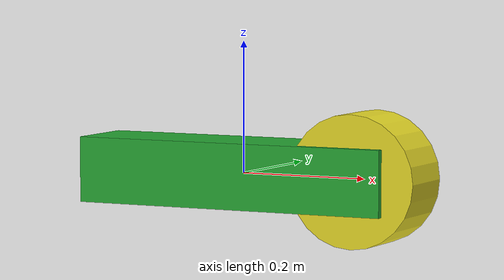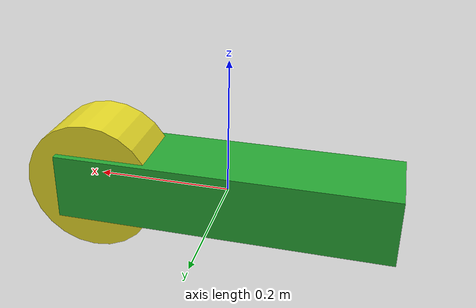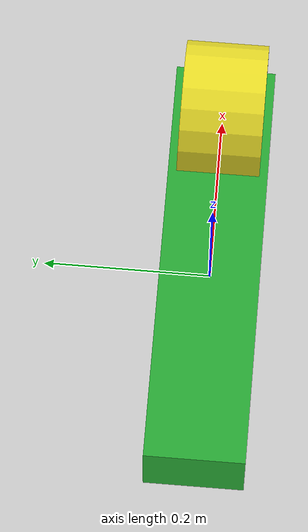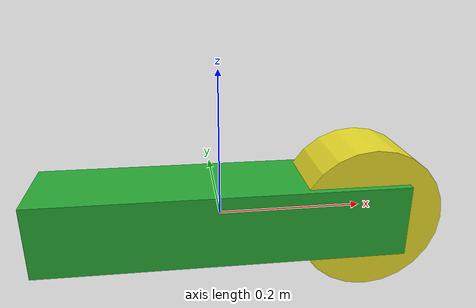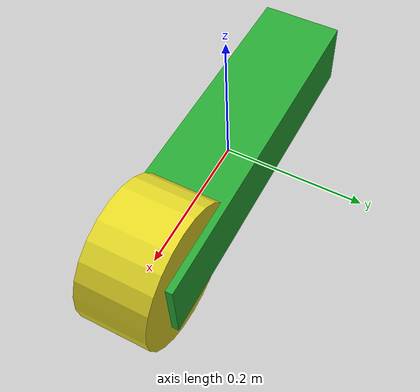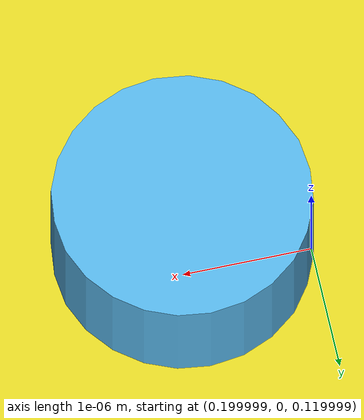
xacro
<?xml version="1.0"?>
<robot name="bicycle_bot" xmlns:xacro="http://wiki.ros.org/xacro">
  <!-- Include xacro for inertials, materials and wheels -->
  <xacro:include filename="$(find steer_bot_description)/urdf/wheel.xacro"/>

  <xacro:property name="robot_namespace" value="/bicycle_bot"/>

  <!-- Gazebo plugins -->
  <gazebo>
    <!-- Load ros_control plugin -->
    <plugin name="gazebo_ros_control" filename="libgazebo_ros_control.so">
      <robotSimType>gazebo_ros_control/DefaultRobotHWSim</robotSimType>
      <legacyModeNS>false</legacyModeNS>
    </plugin>

    <!-- Load gazebo_ros plugin. Publish passive (non-actuated) joints from Gazebo -->
    <plugin name="gazebo_ros_joint_state_publisher" filename="libgazebo_ros_joint_state_publisher.so">
        <jointName>
            front_wheel_joint
        </jointName>
        <updateRate>50</updateRate>
        <alwaysOn>true</alwaysOn>
    </plugin>
  </gazebo>

  <!-- Math constants -->
  <xacro:property name="deg_to_rad" value="0.01745329251994329577"/>

  <!-- Robot base dimensions -->
  <xacro:property name="base_length" value="0.5" />
  <xacro:property name="base_width" value="0.12" />
  <xacro:property name="base_height" value="0.1" />
  <xacro:property name="base_mass" value="5" />

  <!-- Wheel link dimensions -->
  <xacro:property name="wheel_radius" value="0.1" />
  <xacro:property name="wheel_thickness" value="0.1" />
  <xacro:property name="wheel_mass" value="1" />

  <!-- Steering link dimensions -->
  <xacro:property name="steer_radius" value="0.05" />
  <xacro:property name="steer_thickness" value="0.02" />
  <xacro:property name="steer_mass" value="1" />

  <!-- Axle positions -->
  <xacro:property name="axle_offset" value="0.05" />
  <xacro:property name="steer_offset" value="0.02" />

  <!-- Base link -->
  <link name="base_link">
    <visual>
      <origin xyz="0 0 0" rpy="0 0 0"/>
      <geometry>
        <box size="${base_length} ${base_width} ${base_height}"/>
      </geometry>
      <material name="green" />
    </visual>
    <collision>
      <origin xyz="0 0 0" rpy="0 0 0"/>
      <geometry>
        <box size="${base_length} ${base_width} ${base_height}"/>
      </geometry>
    </collision>
    <xacro:solid_cuboid_inertial
        rpy="0 0 0" xyz="0 0 0"
        mass="${base_mass}"
        x="${base_length}" y="${base_width}" z="${base_height}" />
  </link>

  <!-- Front steer and rear wheel joints required for ackermann_steering_controller -->
  <xacro:front_steer
    name="front"
    parent="base"
    steer_radius="${steer_radius}"
    steer_thickness="${steer_thickness}"
    steer_mass="${steer_mass}"
    base_length="${base_length}"
    base_width="${base_width}"
    axle_offset="${axle_offset}"
    steer_height="${wheel_radius+steer_offset}">
  </xacro:front_steer>

  <xacro:front_wheel
    name="front"
    parent="front_steer"
    wheel_radius="${wheel_radius}"
    wheel_thickness="${wheel_thickness}"
    wheel_mass="${wheel_mass}">
    <origin xyz="0 0 ${-wheel_radius-steer_offset}" rpy="${-90 * deg_to_rad} 0 0"/>
  </xacro:front_wheel>

  <xacro:rear_wheel
    name="rear"
    parent="base"
    wheel_radius="${wheel_radius}"
    wheel_thickness="${wheel_thickness}"
    wheel_mass="${wheel_mass}">
    <origin xyz="${-base_length/2+axle_offset} 0 0" rpy="${-90 * deg_to_rad} 0 0"/>
  </xacro:rear_wheel>

  <!-- Colour -->
  <gazebo reference="base_link">
    <material>Gazebo/Green</material>
  </gazebo>

</robot>

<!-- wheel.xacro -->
<robot name="wheel" xmlns:xacro="http://wiki.ros.org/xacro">
  <!-- Include xacro for materials and inertials -->
  <xacro:include filename="$(find qingzhou_description)/urdf/materials.xacro"/>
  <xacro:include filename="$(find qingzhou_description)/urdf/inertials.xacro"/>

  <!-- Properties -->
  <xacro:property name="steer_effort" value="10.0"/>
  <xacro:property name="steer_velocity" value="5.0"/>
  <xacro:property name="steer_limit_deg" value="45.0"/>

  <!-- Bicycle model front steering link (required for steer_drive_controller) -->
  <xacro:macro name="front_steer"
    params="
      name
      parent
      steer_radius
      steer_thickness
      steer_mass
      base_length
      base_width
      axle_offset
      steer_height">
      <!-- bycile steer link-->
    <link name="${name}_steer_link">
      <visual>
        <origin xyz="0 0 0" rpy="0 0 0"/>
        <geometry>
          <cylinder radius="${0.000001}" length="${0.000001}"/>
        </geometry>
      </visual>
      <collision>
        <origin xyz="0 0 0" rpy="0 0 0"/>
        <geometry>
          <cylinder radius="${steer_radius}" length="${steer_thickness}"/>
        </geometry>
      </collision>
      <xacro:solid_cylinder_inertial
          rpy="0 0 0" xyz="0 0 0"
          mass="${steer_mass}"
          radius="${steer_radius}" length="${steer_thickness}" />
    </link>

    <joint name="${name}_steer_joint" type="revolute">
      <parent link="${parent}_link"/>
      <child link="${name}_steer_link"/>
      <origin xyz="${base_length/2-axle_offset} 0 ${steer_height}" rpy="0 0 0"/>
      <axis xyz="0 0 1"/>
      <limit effort="${steer_effort}"
             lower="${-180.0 * deg_to_rad}" upper="${180.0 * deg_to_rad}"
             velocity="${steer_velocity}"/>
    </joint>

    <transmission name="${name}_steer_joint_trans">
      <type>transmission_interface/SimpleTransmission</type>
      <actuator name="${name}_steer_joint_motor">
        <mechanicalReduction>1</mechanicalReduction>
        <hardwareInterface>hardware_interface/PositionJointInterface</hardwareInterface>
      </actuator>
      <joint name="${name}_steer_joint">
        <hardwareInterface>hardware_interface/PositionJointInterface</hardwareInterface>
      </joint>
    </transmission>

  </xacro:macro>

  <!-- Car steering model front (steerable) wheel links (left/right) -->
  <xacro:macro name="front_wheel_lr"
    params="
      name
      parent
      reflect
      wheel_radius
      wheel_thickness
      wheel_mass
      steer_radius
      steer_thickness
      steer_mass
      base_length
      base_width
      axle_offset
      steer_height">
    <link name="${name}_steer_link">
      <visual>
        <origin xyz="0 0 0" rpy="0 0 0"/>
        <geometry>
          <cylinder radius="0.0001" length="0.0001"/>
        </geometry>
      </visual>
      <collision>
        <origin xyz="0 0 0" rpy="0 0 0"/>
        <geometry>
          <cylinder radius="0.0001" length="0.0001"/>
        </geometry>
      </collision>
      <xacro:solid_cylinder_inertial
          rpy="0 0 0" xyz="0 0 0"
          mass="${steer_mass}"
          radius="${steer_radius}" length="${steer_thickness}" />
    </link>

    <joint name="${name}_steer_joint" type="revolute">
      <parent link="${parent}_link"/>
      <child link="${name}_steer_link"/>
      <origin xyz="${base_length/2-axle_offset*2} ${reflect*(base_width/2)} ${steer_height}" rpy="0 0 0"/>
      <axis xyz="0 0 1"/>
      <limit effort="${steer_effort}"
             lower="${steer_limit_deg * deg_to_rad * -1.0}" upper="${steer_limit_deg * deg_to_rad}"
             velocity="${steer_velocity}"/>
    </joint>

    <link name="${name}_wheel_link">
      <visual>
        <origin xyz="0 0 0" rpy="0 0 0"/>
        <geometry>
          <mesh filename="package://qingzhou_description/meshes/wheel.dae" />
        </geometry>
      </visual>
      <collision>
        <origin xyz="0 0 0" rpy="0 0 0"/>
        <geometry>
          <cylinder radius="${wheel_radius}" length="${wheel_thickness}"/>
        </geometry>
      </collision>
      <xacro:solid_cylinder_inertial
          rpy="0 0 0" xyz="0 0 0"
          mass="${wheel_mass}"
          radius="${wheel_radius}" length="${wheel_thickness}" />
    </link>

    <joint name="${name}_wheel_joint" type="continuous">
      <parent link="${name}_steer_link"/>
      <child link="${name}_wheel_link"/>
      <origin xyz="0 0 ${-steer_height}" rpy="${-90 * deg_to_rad} 0 0"/>
      <axis xyz="0 0 1"/>
    </joint>

    <transmission name="${name}_steer_joint_trans">
      <type>transmission_interface/SimpleTransmission</type>
      <actuator name="${name}_steer_joint_motor">
        <mechanicalReduction>1</mechanicalReduction>
        <hardwareInterface>hardware_interface/PositionJointInterface</hardwareInterface>
      </actuator>
      <joint name="${name}_steer_joint">
        <hardwareInterface>hardware_interface/PositionJointInterface</hardwareInterface>
      </joint>
    </transmission>

    <transmission name="${name}_wheel_joint_trans">
      <type>transmission_interface/SimpleTransmission</type>
      <actuator name="${name}_wheel_joint_motor">
        <mechanicalReduction>1</mechanicalReduction>
        <hardwareInterface>hardware_interface/VelocityJointInterface</hardwareInterface>
      </actuator>
      <joint name="${name}_wheel_joint">
        <hardwareInterface>hardware_interface/VelocityJointInterface</hardwareInterface>
      </joint>
    </transmission>

  </xacro:macro>

  <!-- Bicycle model rear wheel link (required for steer_drive_controller) -->
  <xacro:macro name="rear_wheel"
    params="
      name
      parent
      wheel_radius
      wheel_thickness
      wheel_mass
      *origin">
    <link name="${name}_wheel_link">
      <visual>
        <origin xyz="0 0 0" rpy="0 0 0"/>
        <geometry>
          <cylinder radius="0.0001" length="0.0001"/>
        </geometry>
        <material name="yellow" />
      </visual>
      <collision>
        <origin xyz="0 0 0" rpy="0 0 0"/>
        <geometry>
          <cylinder radius="0.0001" length="0.0001"/>
        </geometry>
      </collision>
      <xacro:solid_cylinder_inertial
          rpy="0 0 0" xyz="0 0 0"
          mass="${wheel_mass}"
          radius="${wheel_radius}" length="${wheel_thickness}" />
    </link>

    <joint name="${name}_wheel_joint" type="continuous">
      <parent link="${parent}_link"/>
      <child link="${name}_wheel_link"/>
      <xacro:insert_block name="origin"/>
      <axis xyz="0 0 1"/>
    </joint>

    <transmission name="${name}_wheel_joint_trans">
      <type>transmission_interface/SimpleTransmission</type>
      <actuator name="${name}_wheel_joint_motor">
        <mechanicalReduction>1</mechanicalReduction>
        <hardwareInterface>hardware_interface/VelocityJointInterface</hardwareInterface>
      </actuator>
      <joint name="${name}_wheel_joint">
        <hardwareInterface>hardware_interface/VelocityJointInterface</hardwareInterface>
      </joint>
    </transmission>

  </xacro:macro>

  <!-- Bicycle model front wheel link (passive - no transmission) -->
  <xacro:macro name="front_wheel"
    params="
      name
      parent
      wheel_radius
      wheel_thickness
      wheel_mass
      *origin">
    <link name="${name}_wheel_link">
      <visual>
        <origin xyz="0 0 0" rpy="0 0 0"/>
        <geometry>
          <cylinder radius="${wheel_radius}" length="${wheel_thickness}"/>
        </geometry>
        <material name="yellow" />
      </visual>
      <collision>
        <origin xyz="0 0 0" rpy="0 0 0"/>
        <geometry>
          <cylinder radius="${wheel_radius}" length="${wheel_thickness}"/>
        </geometry>
      </collision>
      <xacro:solid_cylinder_inertial
          rpy="0 0 0" xyz="0 0 0"
          mass="${wheel_mass}"
          radius="${wheel_radius}" length="${wheel_thickness}" />
    </link>

    <joint name="${name}_wheel_joint" type="continuous">
      <parent link="${parent}_link"/>
      <child link="${name}_wheel_link"/>
      <xacro:insert_block name="origin"/>
      <axis xyz="0 0 1"/>
    </joint>

  </xacro:macro>

  <!-- Car steering model rear wheel links (left/right) -->
  <xacro:macro name="rear_wheel_lr"
    params="
      name
      parent
      wheel_radius
      wheel_thickness
      wheel_mass
      *origin">
    <link name="${name}_wheel_link">
      <visual>
        <origin xyz="0 0 0" rpy="0 0 0"/>
        <geometry>
          <mesh filename="package://qingzhou_description/meshes/wheel.dae" />
        </geometry>
      </visual>
      <collision>
        <origin xyz="0 0 0" rpy="0 0 0"/>
        <geometry>
          <cylinder radius="${wheel_radius}" length="${wheel_thickness}"/>
        </geometry>
      </collision>
      <xacro:solid_cylinder_inertial
          rpy="0 0 0" xyz="0 0 0"
          mass="${wheel_mass}"
          radius="${wheel_radius}" length="${wheel_thickness}" />
    </link>

    <joint name="${name}_wheel_joint" type="continuous">
      <parent link="${parent}_link"/>
      <child link="${name}_wheel_link"/>
      <xacro:insert_block name="origin"/>
      <axis xyz="0 0 1"/>
    </joint>

    <transmission name="${name}_wheel_joint_trans">
      <type>transmission_interface/SimpleTransmission</type>
      <actuator name="${name}_wheel_joint_motor">
        <mechanicalReduction>1</mechanicalReduction>
        <hardwareInterface>hardware_interface/VelocityJointInterface</hardwareInterface>
      </actuator>
      <joint name="${name}_wheel_joint">
        <hardwareInterface>hardware_interface/VelocityJointInterface</hardwareInterface>
      </joint>
    </transmission>

  </xacro:macro>
</robot>

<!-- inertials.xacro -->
<!--  xacro macros for inertials.

    Define xacro macros for math constants and inertials:

    - solid cuboid
    - solid cylinder
    - null (a placeholder inertial for logical link elements)
 -->
<robot name="inertials" xmlns:xacro="http://wiki.ros.org/xacro">

    <!-- Math constants -->
    <xacro:property name="math_pi"        value="3.141592653589793" />
    <xacro:property name="math_pi_over_2" value="1.5707963267948966" />
    <xacro:property name="math_pi_over_4" value="0.785398163397448" />

    <!-- Inertial for solid cuboid with dimensions x y z  -->
    <xacro:macro name="solid_cuboid_inertial" params="rpy xyz mass x y z">
        <inertial>
            <origin rpy="${rpy}" xyz="${xyz}"/>
            <mass value="${mass}" />
            <inertia
                ixx="${mass * (y * y + z * z) / 12.0}" ixy="0.0" ixz="0.0"
                iyy="${mass * (x * x + z * z) / 12.0}" iyz="0.0"
                izz="${mass * (x * x + y * y) / 12.0}" />
        </inertial>
    </xacro:macro>

    <!-- Inertial for solid cylinder with radius and length aligned to z-axis  -->
    <xacro:macro name="solid_cylinder_inertial" params="rpy xyz mass radius length">
        <inertial>
            <origin rpy="${rpy}" xyz="${xyz}"/>
            <mass value="${mass}" />
            <inertia
                ixx="${mass * (3.0 * radius * radius + length * length) / 12.0}" ixy="0.0" ixz="0.0"
                iyy="${mass * (3.0 * radius * radius + length * length) / 12.0}" iyz="0.0"
                izz="${mass * (radius * radius) / 2.0}" />
        </inertial>
    </xacro:macro>

    <!-- A null inertial - used in placeholder links to esure the model will work in Gazebo -->
    <xacro:macro name="null_inertial">
        <inertial>
            <mass value="0.001"/>
            <inertia ixx="0.001" ixy="0" ixz="0" iyy="0.001" iyz="0" izz="0.001"/>
        </inertial>
    </xacro:macro>
</robot>
